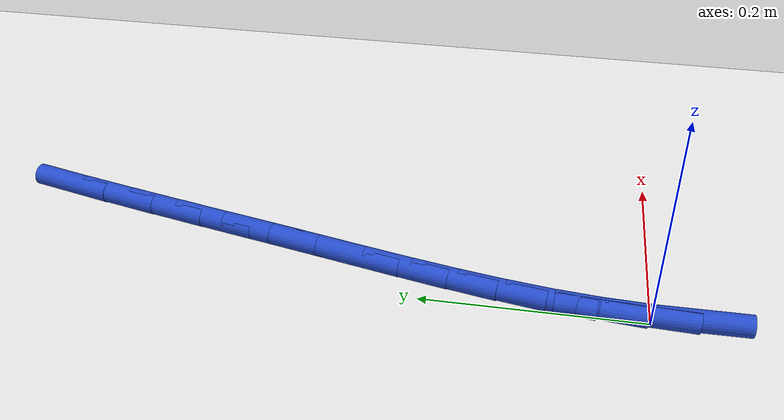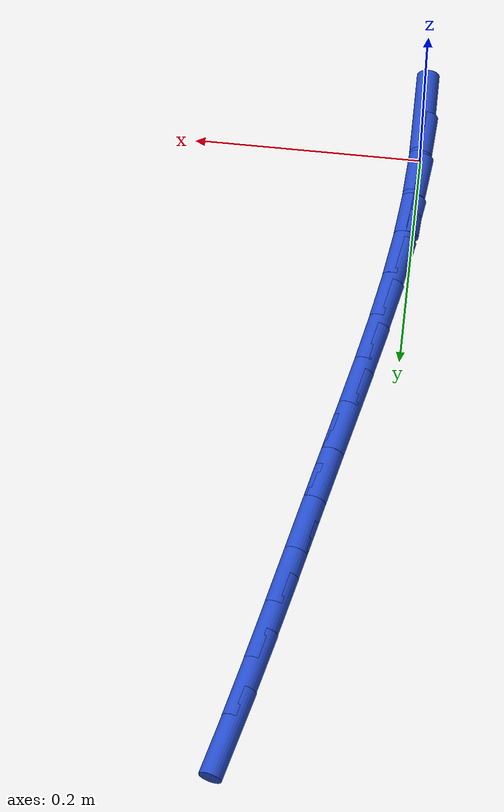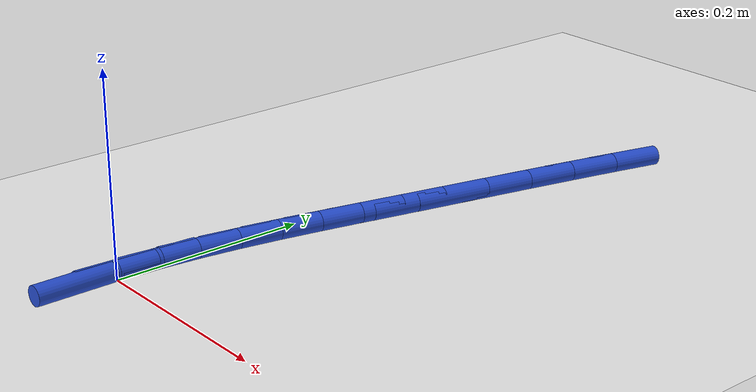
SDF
<sdf version="1.6">
 <world name="default">
  <model name="ground_plane">
   <static>1</static>
   <link name="link">
    <collision name="collision">
     <geometry><plane><normal>0 0 1</normal><size>100 100</size></plane></geometry>
     <surface><friction><ode><mu>100</mu><mu2>50</mu2></ode></friction></surface>
    </collision>
    <visual name="visual">
     <cast_shadows>0</cast_shadows>
     <geometry><plane><normal>0 0 1</normal><size>100 100</size></plane></geometry>
     <material>
      <script><uri>file://media/materials/scripts/gazebo.material</uri><name>Gazebo/WhiteGlow</name></script>
     </material>
    </visual>
   </link>
  </model>
  <model name="line">
   <link name="link_0">
    <pose>8.673617379884035e-18 1.1102230246251565e-16 0.01 0 1.57 1.5194249731132563</pose>
    <collision name="collision">
     <geometry><cylinder><radius>0.01</radius><length>0.08</length></cylinder></geometry>
    </collision>
    <visual name="visual">
     <material>
      <script><name>Gazebo/Blue</name><uri>file://media/materials/scripts/gazebo.material</uri></script>
     </material>
     <geometry><cylinder><radius>0.01</radius><length>0.08</length></cylinder></geometry>
    </visual>
   </link>
   <link name="link_1">
    <pose>0.002190942777589316 0.042611591296382964 0.01 0 1.57 1.4687383677369295</pose>
    <collision name="collision">
     <geometry><cylinder><radius>0.01</radius><length>0.08</length></cylinder></geometry>
    </collision>
    <visual name="visual">
     <material>
      <script><name>Gazebo/Blue</name><uri>file://media/materials/scripts/gazebo.material</uri></script>
     </material>
     <geometry><cylinder><radius>0.01</radius><length>0.08</length></cylinder></geometry>
    </visual>
   </link>
   <link name="link_2">
    <pose>0.006519865810170455 0.08488054174759449 0.01 0 1.57 1.4261699032692958</pose>
    <collision name="collision">
     <geometry><cylinder><radius>0.01</radius><length>0.08</length></cylinder></geometry>
    </collision>
    <visual name="visual">
     <material>
      <script><name>Gazebo/Blue</name><uri>file://media/materials/scripts/gazebo.material</uri></script>
     </material>
     <geometry><cylinder><radius>0.01</radius><length>0.08</length></cylinder></geometry>
    </visual>
   </link>
   <link name="link_3">
    <pose>0.012678690763863158 0.1271675860584406 0.01 0 1.57 1.3926854214284805</pose>
    <collision name="collision">
     <geometry><cylinder><radius>0.01</radius><length>0.08</length></cylinder></geometry>
    </collision>
    <visual name="visual">
     <material>
      <script><name>Gazebo/Blue</name><uri>file://media/materials/scripts/gazebo.material</uri></script>
     </material>
     <geometry><cylinder><radius>0.01</radius><length>0.08</length></cylinder></geometry>
    </visual>
   </link>
   <link name="link_4">
    <pose>0.020359339304787193 0.1698334589337274 0.01 0 1.57 1.3686799920199342</pose>
    <collision name="collision">
     <geometry><cylinder><radius>0.01</radius><length>0.08</length></cylinder></geometry>
    </collision>
    <visual name="visual">
     <material>
      <script><name>Gazebo/Blue</name><uri>file://media/materials/scripts/gazebo.material</uri></script>
     </material>
     <geometry><cylinder><radius>0.01</radius><length>0.08</length></cylinder></geometry>
    </visual>
   </link>
   <link name="link_5">
    <pose>0.02925373309906229 0.2132388950782607 0.01 0 1.57 1.354057447493396</pose>
    <collision name="collision">
     <geometry><cylinder><radius>0.01</radius><length>0.08</length></cylinder></geometry>
    </collision>
    <visual name="visual">
     <material>
      <script><name>Gazebo/Blue</name><uri>file://media/materials/scripts/gazebo.material</uri></script>
     </material>
     <geometry><cylinder><radius>0.01</radius><length>0.08</length></cylinder></geometry>
    </visual>
   </link>
   <link name="link_6">
    <pose>0.03905379381280821 0.25774462919684654 0.01 0 1.57 1.348340691334399</pose>
    <collision name="collision">
     <geometry><cylinder><radius>0.01</radius><length>0.08</length></cylinder></geometry>
    </collision>
    <visual name="visual">
     <material>
      <script><name>Gazebo/Blue</name><uri>file://media/materials/scripts/gazebo.material</uri></script>
     </material>
     <geometry><cylinder><radius>0.01</radius><length>0.08</length></cylinder></geometry>
    </visual>
   </link>
   <link name="link_7">
    <pose>0.04945144311214468 0.30371139599429076 0.01 0 1.57 1.3504304282927446</pose>
    <collision name="collision">
     <geometry><cylinder><radius>0.01</radius><length>0.08</length></cylinder></geometry>
    </collision>
    <visual name="visual">
     <material>
      <script><name>Gazebo/Blue</name><uri>file://media/materials/scripts/gazebo.material</uri></script>
     </material>
     <geometry><cylinder><radius>0.01</radius><length>0.08</length></cylinder></geometry>
    </visual>
   </link>
   <link name="link_8">
    <pose>0.06015090043293852 0.3514760524809787 0.01 0 1.57 1.3534257557211442</pose>
    <collision name="collision">
     <geometry><cylinder><radius>0.01</radius><length>0.08</length></cylinder></geometry>
    </collision>
    <visual name="visual">
     <material>
      <script><name>Gazebo/Blue</name><uri>file://media/materials/scripts/gazebo.material</uri></script>
     </material>
     <geometry><cylinder><radius>0.01</radius><length>0.08</length></cylinder></geometry>
    </visual>
   </link>
   <link name="link_9">
    <pose>0.07107705800835572 0.4009469911790704 0.01 0 1.57 1.3521545960017007</pose>
    <collision name="collision">
     <geometry><cylinder><radius>0.01</radius><length>0.08</length></cylinder></geometry>
    </collision>
    <visual name="visual">
     <material>
      <script><name>Gazebo/Blue</name><uri>file://media/materials/scripts/gazebo.material</uri></script>
     </material>
     <geometry><cylinder><radius>0.01</radius><length>0.08</length></cylinder></geometry>
    </visual>
   </link>
   <link name="link_10">
    <pose>0.08234563257996456 0.4516620943968097 0.01 0 1.57 1.346731115510854</pose>
    <collision name="collision">
     <geometry><cylinder><radius>0.01</radius><length>0.08</length></cylinder></geometry>
    </collision>
    <visual name="visual">
     <material>
      <script><name>Gazebo/Blue</name><uri>file://media/materials/scripts/gazebo.material</uri></script>
     </material>
     <geometry><cylinder><radius>0.01</radius><length>0.08</length></cylinder></geometry>
    </visual>
   </link>
   <link name="link_11">
    <pose>0.09407862945060337 0.5031470343956221 0.01 0 1.57 1.3372222786992882</pose>
    <collision name="collision">
     <geometry><cylinder><radius>0.01</radius><length>0.08</length></cylinder></geometry>
    </collision>
    <visual name="visual">
     <material>
      <script><name>Gazebo/Blue</name><uri>file://media/materials/scripts/gazebo.material</uri></script>
     </material>
     <geometry><cylinder><radius>0.01</radius><length>0.08</length></cylinder></geometry>
    </visual>
   </link>
   <link name="link_12">
    <pose>0.10639805392311062 0.5549274834369342 0.01 0 1.57 1.323494425854062</pose>
    <collision name="collision">
     <geometry><cylinder><radius>0.01</radius><length>0.08</length></cylinder></geometry>
    </collision>
    <visual name="visual">
     <material>
      <script><name>Gazebo/Blue</name><uri>file://media/materials/scripts/gazebo.material</uri></script>
     </material>
     <geometry><cylinder><radius>0.01</radius><length>0.08</length></cylinder></geometry>
    </visual>
   </link>
   <link name="link_189">
    <pose>0.00018920732408455286 -0.043220482252620374 0.01 0 1.57 -1.566418631185048</pose>
    <collision name="collision">
     <geometry><cylinder><radius>0.01</radius><length>0.08</length></cylinder></geometry>
    </collision>
    <visual name="visual">
     <material>
      <script><name>Gazebo/Blue</name><uri>file://media/materials/scripts/gazebo.material</uri></script>
     </material>
     <geometry><cylinder><radius>0.01</radius><length>0.08</length></cylinder></geometry>
    </visual>
   </link>
   <link name="link_190">
    <pose>-1.0408340855860843e-17 2.3592239273284576e-16 0.01 0 1.57 1.5177650792491817</pose>
    <collision name="collision">
     <geometry><cylinder><radius>0.01</radius><length>0.08</length></cylinder></geometry>
    </collision>
    <visual name="visual">
     <material>
      <script><name>Gazebo/Blue</name><uri>file://media/materials/scripts/gazebo.material</uri></script>
     </material>
     <geometry><cylinder><radius>0.01</radius><length>0.08</length></cylinder></geometry>
    </visual>
   </link>
   <link name="link_191">
    <pose>0.0022568512647875155 0.04251710670264355 0.01 0 1.57 1.5177650792491824</pose>
    <collision name="collision">
     <geometry><cylinder><radius>0.01</radius><length>0.08</length></cylinder></geometry>
    </collision>
    <visual name="visual">
     <material>
      <script><name>Gazebo/Blue</name><uri>file://media/materials/scripts/gazebo.material</uri></script>
     </material>
     <geometry><cylinder><radius>0.01</radius><length>0.08</length></cylinder></geometry>
    </visual>
   </link>
  </model>
 </world>
</sdf>
